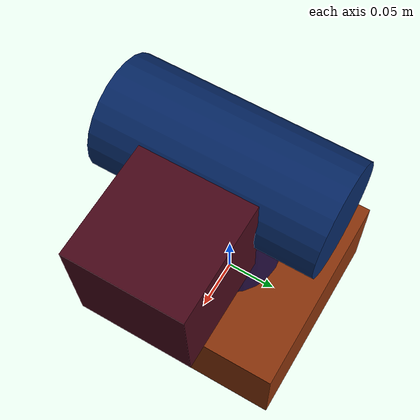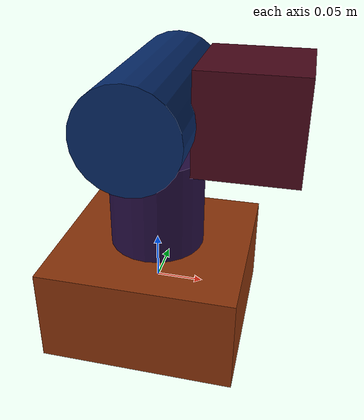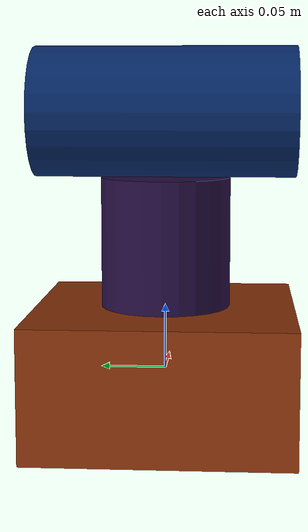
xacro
<?xml version="1.0" encoding="UTF-8"?>
<robot xmlns:xacro="http://www.ros.org/wiki/xacro" xmlns="http://www.ros.org/urdf" name="servo">

  <!-- 材料定义 -->
  <material name="orange">
    <color rgba="0.546 0.202 0.041 1.0"/>
  </material>

  <material name="purple">
    <color rgba="0.144 0.053 0.254 1.0"/>
  </material>

  <material name="blue">
    <color rgba="0.022 0.156 0.402 1.0"/>
  </material>

  <material name="pink">
    <color rgba="0.283 0.030 0.098 1.0"/>
  </material>

  <!-- 底座 base_link -->
  <link name="base_link">
    <visual>
      <geometry>
        <box size="0.2 0.2 0.1"/>
      </geometry>
      <origin xyz="0 0 0" rpy="0 0 0"/>
      <material name="orange"/>
    </visual>
    <collision>
      <geometry>
        <box size="0.2 0.2 0.1"/>
      </geometry>
      <origin xyz="0 0 0" rpy="0 0 0"/>
    </collision>
    <inertial>
      <mass value="10000.0"/>
      <origin xyz="0 0 0" rpy="0 0 0"/>
      <inertia ixx="0.167" iyy="0.167" izz="0.167" ixy="0.0" ixz="0.0" iyz="0.0"/>
    </inertial>
  </link>

  <!-- 水平旋转圆柱 horizontal_cylinder -->
  <link name="horizontal_cylinder">
    <visual>
      <geometry>
        <cylinder radius="0.05" length="0.1"/>
      </geometry>
      <origin xyz="0 0 0" rpy="0 0 0"/>
      <material name="purple"/>
    </visual>
    <collision>
      <geometry>
        <cylinder radius="0.05" length="0.1"/>
      </geometry>
      <origin xyz="0 0 0" rpy="0 0 0"/>
    </collision>
    <inertial>
      <mass value="1.0"/>
      <origin xyz="0 0 0" rpy="0 0 0"/>
      <inertia ixx="0.333" iyy="0.5" izz="0.333" ixy="0.0" ixz="0.0" iyz="0.0"/>
    </inertial>
  </link>

  <!-- 水平旋转关节 -->
  <joint name="horizontal_joint" type="revolute">
    <parent link="base_link"/>
    <child link="horizontal_cylinder"/>
    <origin xyz="0 0 0.1" rpy="0 0 0"/>
    <axis xyz="0 0 1"/>
    <limit lower="-3.14159" upper="3.14159" effort="10" velocity="1.0"/>
    <dynamics damping="0.1" friction="0.1"/>
  </joint>

  <!-- 竖直旋转圆柱 vertical_cylinder -->
  <link name="vertical_cylinder">
    <visual>
      <geometry>
        <cylinder radius="0.05" length="0.2"/>
      </geometry>
      <origin xyz="0 0 0" rpy="0 0 0"/>
      <material name="blue"/>
    </visual>
    <collision>
      <geometry>
        <cylinder radius="0.05" length="0.2"/>
      </geometry>
      <origin xyz="0 0 0" rpy="0 0 0"/>
    </collision>
    <inertial>
      <mass value="1.0"/>
      <origin xyz="0 0 0" rpy="0 0 0"/>
      <inertia ixx="0.333" iyy="0.5" izz="0.333" ixy="0.0" ixz="0.0" iyz="0.0"/>
    </inertial>
  </link>

  <!-- 竖直旋转关节 -->
  <joint name="vertical_joint" type="revolute">
    <parent link="horizontal_cylinder"/>
    <child link="vertical_cylinder"/>
    <origin xyz="0 0 0.1" rpy="1.5708 0 0"/>
    <axis xyz="0 0 1"/>
    <limit lower="-1.0" upper="1.0" effort="5" velocity="1.0"/>
    <dynamics damping="0.1" friction="0.1"/>
  </joint>

  <!-- 相机 camera_link -->
  <link name="camera_link">
    <visual>
      <geometry>
        <box size="0.1 0.1 0.1"/>
      </geometry>
      <origin xyz="0 0 0" rpy="0 0 0"/>
      <material name="pink"/>
    </visual>
    <collision>
      <geometry>
        <box size="0.1 0.1 0.1"/>
      </geometry>
      <origin xyz="0 0 0" rpy="0 0 0"/>
    </collision>
    <inertial>
      <mass value="1.0"/>
      <origin xyz="0 0 0" rpy="0 0 0"/>
      <inertia ixx="0.167" iyy="0.167" izz="0.167" ixy="0.0" ixz="0.0" iyz="0.0"/>
    </inertial>
  </link>

  <!-- 相机固定关节 -->
  <joint name="camera_joint" type="fixed">
    <parent link="vertical_cylinder"/>
    <child link="camera_link"/>
    <origin xyz="0.095 0 0" rpy="-1.5708 0 0"/>
  </joint>

  <!-- 相机光学框架 -->
  <link name="camera_optical_frame">
    <inertial>
      <mass value="0.001"/>
      <origin xyz="0 0 0" rpy="0 0 0"/>
      <inertia ixx="0.000001" iyy="0.000001" izz="0.000001" ixy="0.0" ixz="0.0" iyz="0.0"/>
    </inertial>
  </link>

  <!-- 相机光学关节 -->
  <joint name="camera_optical_joint" type="fixed">
    <parent link="camera_link"/>
    <child link="camera_optical_frame"/>
    <origin xyz="0 0 0" rpy="-1.57 0 -1.57"/>
  </joint>

  <!-- Gazebo相机传感器 -->
  <gazebo reference="camera_link">
    <material>Gazebo/Red</material>
    <sensor type="camera" name="camera">
      <update_rate>30.0</update_rate>
      <camera name="head">
        <horizontal_fov>1.047</horizontal_fov>
        <image>
          <width>640</width>
          <height>480</height>
          <format>R8G8B8</format>
        </image>
        <clip>
          <near>0.02</near>
          <far>300</far>
        </clip>
      </camera>
      <plugin name="camera_controller" filename="libgazebo_ros_camera.so">
        <alwaysOn>true</alwaysOn>
        <updateRate>0.0</updateRate>
        <cameraName>camera</cameraName>
        <imageTopicName>image_raw</imageTopicName>
        <cameraInfoTopicName>camera_info</cameraInfoTopicName>
        <frameName>camera_link</frameName>
      </plugin>
    </sensor>
  </gazebo>

  <ros2_control name="GazeboSystem" type="system">
    <hardware>
      <plugin>gazebo_ros2_control/GazeboSystem</plugin>
    </hardware>
    <joint name="horizontal_joint">
      <command_interface name="position">
        <param name="min"> -1 </param>
        <param name="max"> 1 </param>
      </command_interface>
      <state_interface name="position">
        <param name="initial_value"> 0 </param>
      </state_interface>
      <state_interface name="velocity"/>
      <state_interface name="effort"/>
    </joint>
    <joint name="vertical_joint">
      <command_interface name="position">
        <param name="min"> -1 </param>
        <param name="max"> 1 </param>
      </command_interface>
      <state_interface name="position">
        <param name="initial_value"> 0 </param>
      </state_interface>
      <state_interface name="velocity"/>
      <state_interface name="effort"/>
    </joint>
  </ros2_control>

  <!-- Gazebo控制插件 -->
  <gazebo>
    <plugin filename="libgazebo_ros2_control.so" name="gazebo_ros2_control">
     <parameters>$(find servo_sim)/config/servo_controllers.yaml</parameters>
    </plugin>
  </gazebo>

  <!-- Gazebo材料属性 -->
  <gazebo reference="base_link">
    <material>Gazebo/Orange</material>
  </gazebo>

  <gazebo reference="horizontal_cylinder">
    <material>Gazebo/Purple</material>
  </gazebo>

  <gazebo reference="vertical_cylinder">
    <material>Gazebo/Blue</material>
  </gazebo>

  <gazebo reference="camera_link">
    <material>Gazebo/Red</material>
  </gazebo>

</robot>
